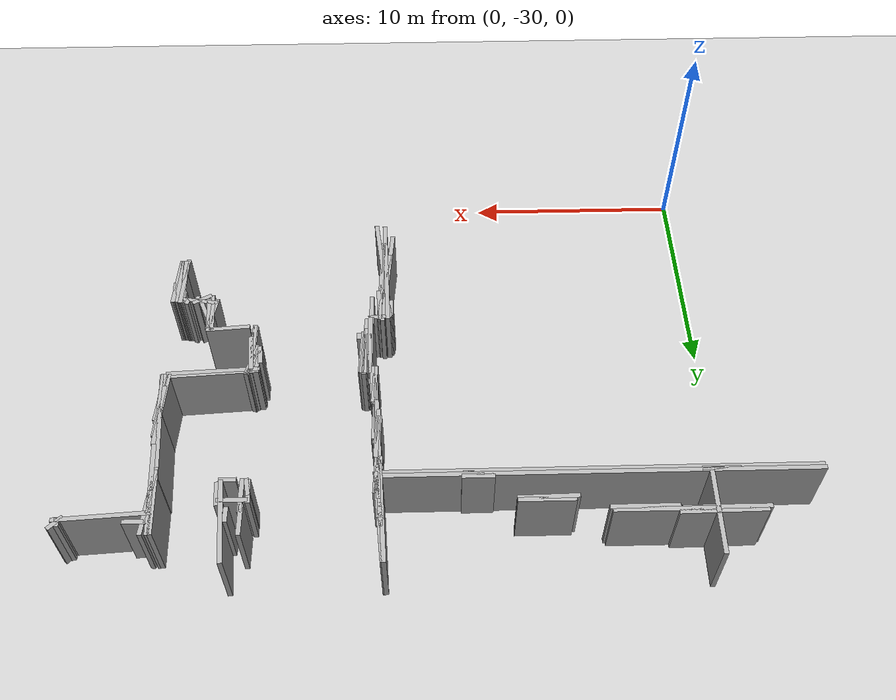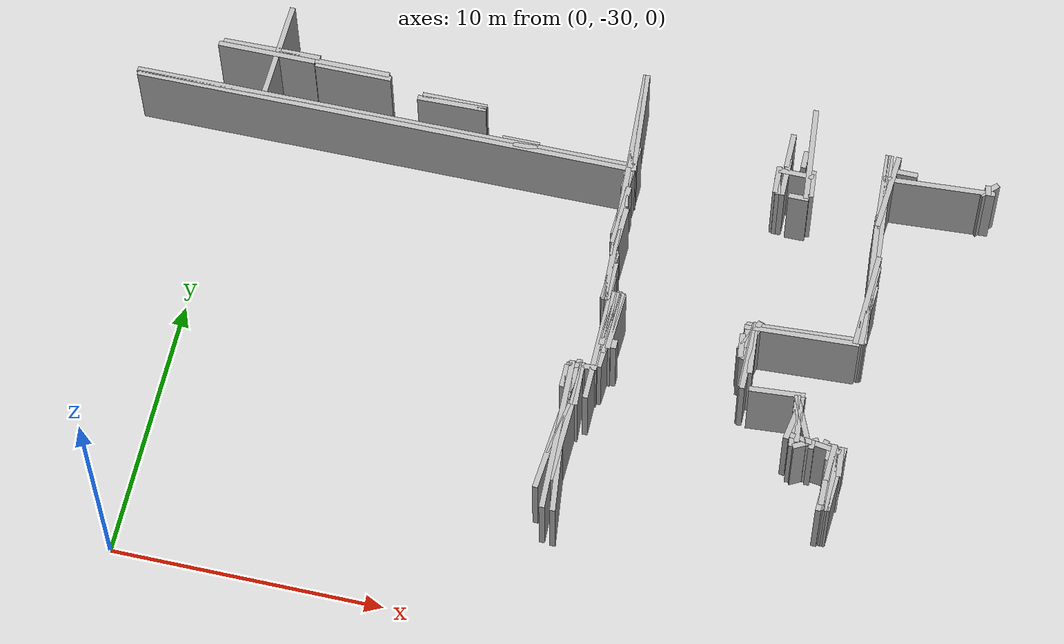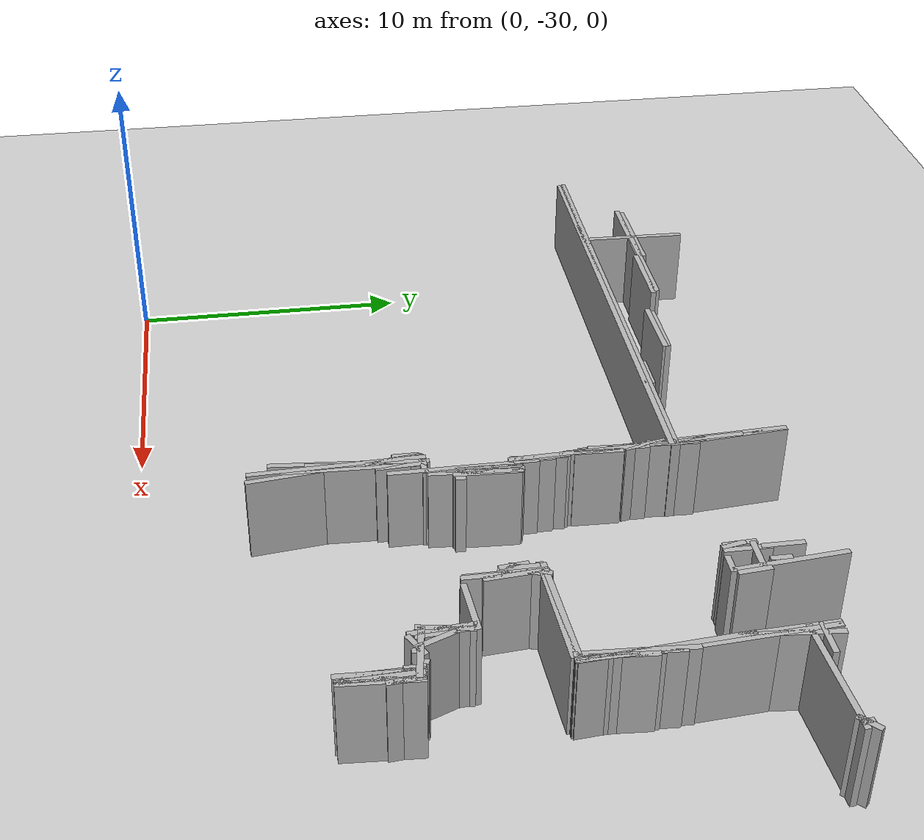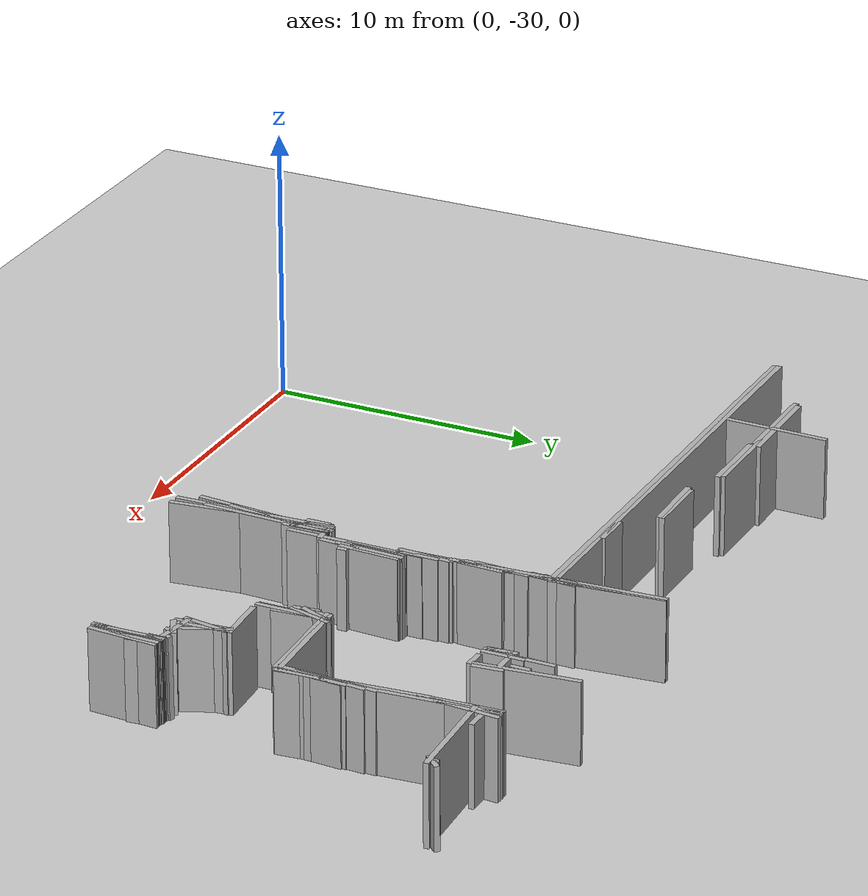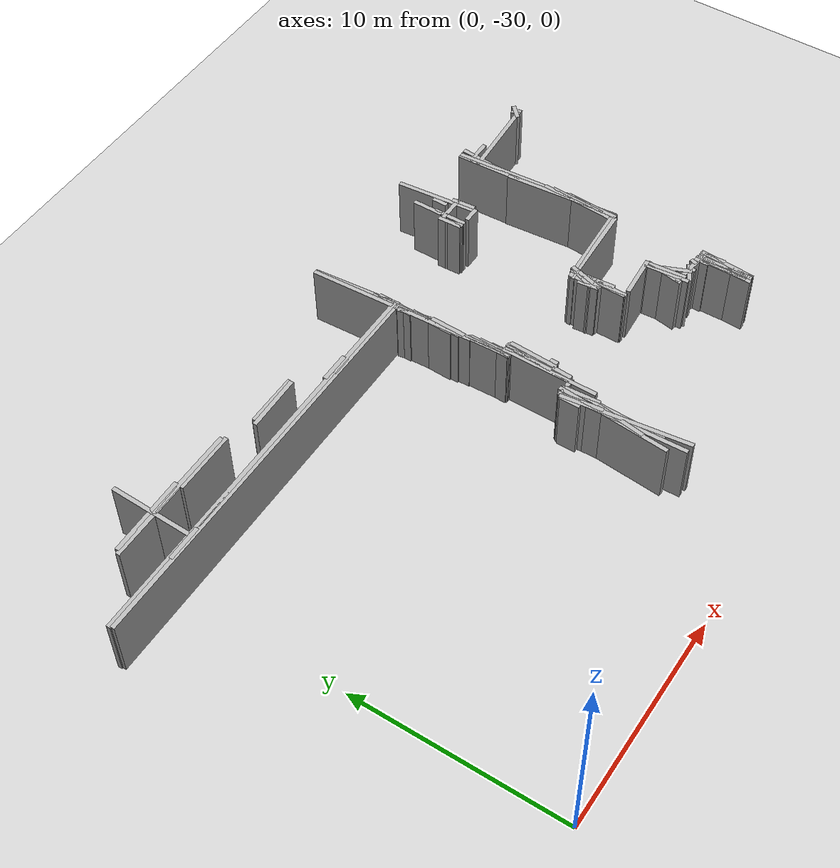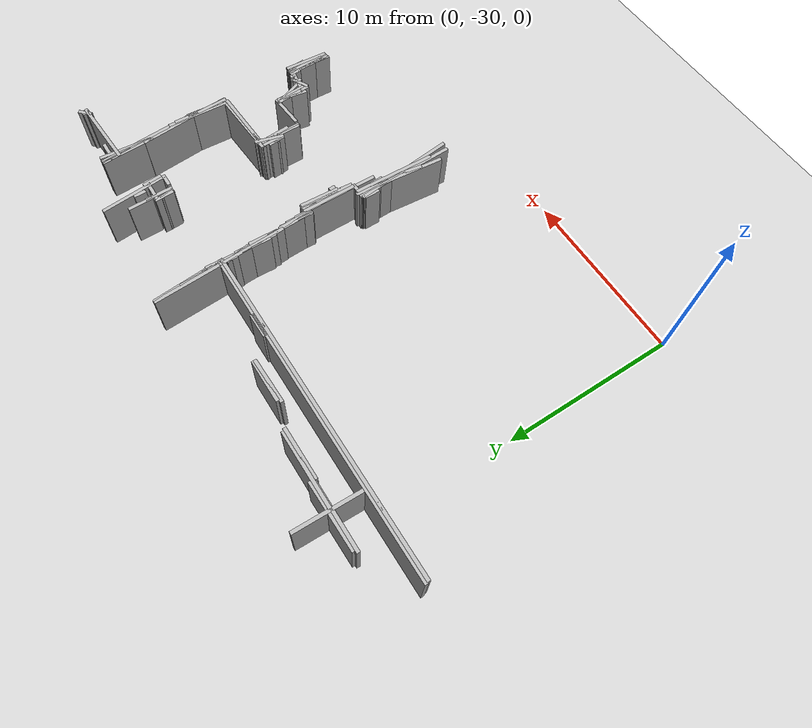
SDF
<sdf version="1.6">
 <world name="aboureyhan">
  <model name="ground_plane">
   <static>true</static>
   <link name="link">
    <collision name="collision">
     <geometry><plane><normal>0 0 1</normal><size>100 100</size></plane></geometry>
    </collision>
    <visual name="visual">
     <geometry><plane><normal>0 0 1</normal><size>500 500</size></plane></geometry>
     <material>
      <ambient>0.8 0.8 0.8 1</ambient>
      <diffuse>0.8 0.8 0.8 1</diffuse>
      <specular>0.8 0.8 0.8 1</specular>
     </material>
    </visual>
   </link>
  </model>
  <model name="wall_4">
   <static>true</static>
   <pose>5.725000000000001 -12.3 1.5 0 0 0.0</pose>
   <link name="link">
    <collision name="collision"><geometry><box><size>18.85 0.2 3.0</size></box></geometry></collision>
    <visual name="visual">
     <geometry><box><size>18.85 0.2 3.0</size></box></geometry>
     <material><ambient>0.5 0.5 0.5 1</ambient><diffuse>0.7 0.7 0.7 1</diffuse></material>
    </visual>
   </link>
  </model>
  <model name="wall_18">
   <static>true</static>
   <pose>5.700000000000001 -12.150000000000002 1.5 0 0 0.0</pose>
   <link name="link">
    <collision name="collision">
     <geometry><box><size>18.900000000000002 0.2 3.0</size></box></geometry>
    </collision>
    <visual name="visual">
     <geometry><box><size>18.900000000000002 0.2 3.0</size></box></geometry>
     <material><ambient>0.5 0.5 0.5 1</ambient><diffuse>0.7 0.7 0.7 1</diffuse></material>
    </visual>
   </link>
  </model>
  <model name="wall_20">
   <static>true</static>
   <pose>14.800000000000002 -23.375000000000004 1.5 0 0 -1.5366216031787017</pose>
   <link name="link">
    <collision name="collision"><geometry><box><size>5.853417805009311 0.2 3.0</size></box></geometry></collision>
    <visual name="visual">
     <geometry><box><size>5.853417805009311 0.2 3.0</size></box></geometry>
     <material><ambient>0.5 0.5 0.5 1</ambient><diffuse>0.7 0.7 0.7 1</diffuse></material>
    </visual>
   </link>
  </model>
  <model name="wall_36">
   <static>true</static>
   <pose>24.475 -14.850000000000001 1.5 0 0 -1.4860938159252384</pose>
   <link name="link">
    <collision name="collision">
     <geometry><box><size>5.3190694674914685 0.2 3.0</size></box></geometry>
    </collision>
    <visual name="visual">
     <geometry><box><size>5.3190694674914685 0.2 3.0</size></box></geometry>
     <material><ambient>0.5 0.5 0.5 1</ambient><diffuse>0.7 0.7 0.7 1</diffuse></material>
    </visual>
   </link>
  </model>
  <model name="wall_118">
   <static>true</static>
   <pose>15.125 -14.450000000000001 1.5 0 0 -1.5335001965752295</pose>
   <link name="link">
    <collision name="collision"><geometry><box><size>6.704662556758542 0.2 3.0</size></box></geometry></collision>
    <visual name="visual">
     <geometry><box><size>6.704662556758542 0.2 3.0</size></box></geometry>
     <material><ambient>0.5 0.5 0.5 1</ambient><diffuse>0.7 0.7 0.7 1</diffuse></material>
    </visual>
   </link>
  </model>
  <model name="wall_126">
   <static>true</static>
   <pose>24.400000000000002 -11.775000000000002 1.5 0 0 -1.5003249822161</pose>
   <link name="link">
    <collision name="collision"><geometry><box><size>4.260575078554537 0.2 3.0</size></box></geometry></collision>
    <visual name="visual">
     <geometry><box><size>4.260575078554537 0.2 3.0</size></box></geometry>
     <material><ambient>0.5 0.5 0.5 1</ambient><diffuse>0.7 0.7 0.7 1</diffuse></material>
    </visual>
   </link>
  </model>
  <model name="wall_129">
   <static>true</static>
   <pose>20.6 -10.250000000000002 1.5 0 0 1.5707963267948966</pose>
   <link name="link">
    <collision name="collision">
     <geometry><box><size>1.4000000000000021 0.2 3.0</size></box></geometry>
    </collision>
    <visual name="visual">
     <geometry><box><size>1.4000000000000021 0.2 3.0</size></box></geometry>
     <material><ambient>0.5 0.5 0.5 1</ambient><diffuse>0.7 0.7 0.7 1</diffuse></material>
    </visual>
   </link>
  </model>
  <model name="wall_132">
   <static>true</static>
   <pose>24.55 -22.975 1.5 0 0 -1.5316007248678414</pose>
   <link name="link">
    <collision name="collision">
     <geometry><box><size>2.5519600310349664 0.2 3.0</size></box></geometry>
    </collision>
    <visual name="visual">
     <geometry><box><size>2.5519600310349664 0.2 3.0</size></box></geometry>
     <material><ambient>0.5 0.5 0.5 1</ambient><diffuse>0.7 0.7 0.7 1</diffuse></material>
    </visual>
   </link>
  </model>
  <model name="wall_139">
   <static>true</static>
   <pose>15.075000000000001 -13.225000000000001 1.5 0 0 1.530817639671606</pose>
   <link name="link">
    <collision name="collision"><geometry><box><size>3.752998800959041 0.2 3.0</size></box></geometry></collision>
    <visual name="visual">
     <geometry><box><size>3.752998800959041 0.2 3.0</size></box></geometry>
     <material><ambient>0.5 0.5 0.5 1</ambient><diffuse>0.7 0.7 0.7 1</diffuse></material>
    </visual>
   </link>
  </model>
  <model name="wall_147">
   <static>true</static>
   <pose>15.5 -18.975 1.5 0 0 1.5707963267948966</pose>
   <link name="link">
    <collision name="collision">
     <geometry><box><size>3.1499999999999986 0.2 3.0</size></box></geometry>
    </collision>
    <visual name="visual">
     <geometry><box><size>3.1499999999999986 0.2 3.0</size></box></geometry>
     <material><ambient>0.5 0.5 0.5 1</ambient><diffuse>0.7 0.7 0.7 1</diffuse></material>
    </visual>
   </link>
  </model>
  <model name="wall_164">
   <static>true</static>
   <pose>14.55 -21.1 1.5 0 0 -1.5707963267948966</pose>
   <link name="link">
    <collision name="collision">
     <geometry><box><size>0.8999999999999986 0.2 3.0</size></box></geometry>
    </collision>
    <visual name="visual">
     <geometry><box><size>0.8999999999999986 0.2 3.0</size></box></geometry>
     <material><ambient>0.5 0.5 0.5 1</ambient><diffuse>0.7 0.7 0.7 1</diffuse></material>
    </visual>
   </link>
  </model>
  <model name="wall_177">
   <static>true</static>
   <pose>15.850000000000001 -18.575000000000003 1.5 0 0 1.526381111547985</pose>
   <link name="link">
    <collision name="collision">
     <geometry><box><size>2.2522211259110416 0.2 3.0</size></box></geometry>
    </collision>
    <visual name="visual">
     <geometry><box><size>2.2522211259110416 0.2 3.0</size></box></geometry>
     <material><ambient>0.5 0.5 0.5 1</ambient><diffuse>0.7 0.7 0.7 1</diffuse></material>
    </visual>
   </link>
  </model>
  <model name="wall_184">
   <static>true</static>
   <pose>21.650000000000002 -11.450000000000001 1.5 0 0 -1.48013643959415</pose>
   <link name="link">
    <collision name="collision"><geometry><box><size>1.104536101718724 0.2 3.0</size></box></geometry></collision>
    <visual name="visual">
     <geometry><box><size>1.104536101718724 0.2 3.0</size></box></geometry>
     <material><ambient>0.5 0.5 0.5 1</ambient><diffuse>0.7 0.7 0.7 1</diffuse></material>
    </visual>
   </link>
  </model>
  <model name="wall_197">
   <static>true</static>
   <pose>24.750000000000004 -22.275000000000002 1.5 0 0 -1.4840579881189102</pose>
   <link name="link">
    <collision name="collision">
     <geometry><box><size>1.1543396380615183 0.2 3.0</size></box></geometry>
    </collision>
    <visual name="visual">
     <geometry><box><size>1.1543396380615183 0.2 3.0</size></box></geometry>
     <material><ambient>0.5 0.5 0.5 1</ambient><diffuse>0.7 0.7 0.7 1</diffuse></material>
    </visual>
   </link>
  </model>
  <model name="wall_210">
   <static>true</static>
   <pose>21.375 -10.225000000000001 1.5 0 0 -1.4777325980704792</pose>
   <link name="link">
    <collision name="collision"><geometry><box><size>3.766297917053296 0.2 3.0</size></box></geometry></collision>
    <visual name="visual">
     <geometry><box><size>3.766297917053296 0.2 3.0</size></box></geometry>
     <material><ambient>0.5 0.5 0.5 1</ambient><diffuse>0.7 0.7 0.7 1</diffuse></material>
    </visual>
   </link>
  </model>
  <model name="wall_223">
   <static>true</static>
   <pose>22.475 -17.525000000000002 1.5 0 0 0.06165017063925908</pose>
   <link name="link">
    <collision name="collision"><geometry><box><size>4.057708713054693 0.2 3.0</size></box></geometry></collision>
    <visual name="visual">
     <geometry><box><size>4.057708713054693 0.2 3.0</size></box></geometry>
     <material><ambient>0.5 0.5 0.5 1</ambient><diffuse>0.7 0.7 0.7 1</diffuse></material>
    </visual>
   </link>
  </model>
  <model name="wall_239">
   <static>true</static>
   <pose>14.725000000000001 -22.975 1.5 0 0 1.4852910331166915</pose>
   <link name="link">
    <collision name="collision"><geometry><box><size>5.269250421075089 0.2 3.0</size></box></geometry></collision>
    <visual name="visual">
     <geometry><box><size>5.269250421075089 0.2 3.0</size></box></geometry>
     <material><ambient>0.5 0.5 0.5 1</ambient><diffuse>0.7 0.7 0.7 1</diffuse></material>
    </visual>
   </link>
  </model>
  <model name="wall_248">
   <static>true</static>
   <pose>1.1500000000000004 -10.200000000000001 1.5 0 0 1.544486609541974</pose>
   <link name="link">
    <collision name="collision"><geometry><box><size>3.801315561749643 0.2 3.0</size></box></geometry></collision>
    <visual name="visual">
     <geometry><box><size>3.801315561749643 0.2 3.0</size></box></geometry>
     <material><ambient>0.5 0.5 0.5 1</ambient><diffuse>0.7 0.7 0.7 1</diffuse></material>
    </visual>
   </link>
  </model>
  <model name="wall_260">
   <static>true</static>
   <pose>20.75 -18.85 1.5 0 0 1.5707963267948966</pose>
   <link name="link">
    <collision name="collision">
     <geometry><box><size>2.6000000000000014 0.2 3.0</size></box></geometry>
    </collision>
    <visual name="visual">
     <geometry><box><size>2.6000000000000014 0.2 3.0</size></box></geometry>
     <material><ambient>0.5 0.5 0.5 1</ambient><diffuse>0.7 0.7 0.7 1</diffuse></material>
    </visual>
   </link>
  </model>
  <model name="wall_281">
   <static>true</static>
   <pose>14.950000000000001 -23.450000000000003 1.5 0 0 -1.450687591227984</pose>
   <link name="link">
    <collision name="collision"><geometry><box><size>5.842088667591413 0.2 3.0</size></box></geometry></collision>
    <visual name="visual">
     <geometry><box><size>5.842088667591413 0.2 3.0</size></box></geometry>
     <material><ambient>0.5 0.5 0.5 1</ambient><diffuse>0.7 0.7 0.7 1</diffuse></material>
    </visual>
   </link>
  </model>
  <model name="wall_294">
   <static>true</static>
   <pose>15.100000000000001 -21.300000000000004 1.5 0 0 -1.5120405040791731</pose>
   <link name="link">
    <collision name="collision">
     <geometry><box><size>1.7029386365926393 0.2 3.0</size></box></geometry>
    </collision>
    <visual name="visual">
     <geometry><box><size>1.7029386365926393 0.2 3.0</size></box></geometry>
     <material><ambient>0.5 0.5 0.5 1</ambient><diffuse>0.7 0.7 0.7 1</diffuse></material>
    </visual>
   </link>
  </model>
  <model name="wall_295">
   <static>true</static>
   <pose>24.5 -15.725000000000001 1.5 0 0 1.516056546745016</pose>
   <link name="link">
    <collision name="collision">
     <geometry><box><size>3.6554753452868463 0.2 3.0</size></box></geometry>
    </collision>
    <visual name="visual">
     <geometry><box><size>3.6554753452868463 0.2 3.0</size></box></geometry>
     <material><ambient>0.5 0.5 0.5 1</ambient><diffuse>0.7 0.7 0.7 1</diffuse></material>
    </visual>
   </link>
  </model>
  <model name="wall_324">
   <static>true</static>
   <pose>8.0 -11.025 1.5 0 0 0.019228399099707482</pose>
   <link name="link">
    <collision name="collision">
     <geometry><box><size>2.6004807247891684 0.2 3.0</size></box></geometry>
    </collision>
    <visual name="visual">
     <geometry><box><size>2.6004807247891684 0.2 3.0</size></box></geometry>
     <material><ambient>0.5 0.5 0.5 1</ambient><diffuse>0.7 0.7 0.7 1</diffuse></material>
    </visual>
   </link>
  </model>
  <model name="wall_327">
   <static>true</static>
   <pose>21.0 -11.150000000000002 1.5 0 0 0.0</pose>
   <link name="link">
    <collision name="collision">
     <geometry><box><size>1.3000000000000007 0.2 3.0</size></box></geometry>
    </collision>
    <visual name="visual">
     <geometry><box><size>1.3000000000000007 0.2 3.0</size></box></geometry>
     <material><ambient>0.5 0.5 0.5 1</ambient><diffuse>0.7 0.7 0.7 1</diffuse></material>
    </visual>
   </link>
  </model>
  <model name="wall_329">
   <static>true</static>
   <pose>20.775 -18.25 1.5 0 0 1.296628875675238</pose>
   <link name="link">
    <collision name="collision">
     <geometry><box><size>1.6620770138594638 0.2 3.0</size></box></geometry>
    </collision>
    <visual name="visual">
     <geometry><box><size>1.6620770138594638 0.2 3.0</size></box></geometry>
     <material><ambient>0.5 0.5 0.5 1</ambient><diffuse>0.7 0.7 0.7 1</diffuse></material>
    </visual>
   </link>
  </model>
  <model name="wall_332">
   <static>true</static>
   <pose>20.55 -18.3 1.5 0 0 1.5707963267948966</pose>
   <link name="link">
    <collision name="collision">
     <geometry><box><size>1.1000000000000014 0.2 3.0</size></box></geometry>
    </collision>
    <visual name="visual">
     <geometry><box><size>1.1000000000000014 0.2 3.0</size></box></geometry>
     <material><ambient>0.5 0.5 0.5 1</ambient><diffuse>0.7 0.7 0.7 1</diffuse></material>
    </visual>
   </link>
  </model>
  <model name="wall_339">
   <static>true</static>
   <pose>8.075000000000001 -10.900000000000002 1.5 0 0 0.0</pose>
   <link name="link">
    <collision name="collision">
     <geometry><box><size>2.4499999999999993 0.2 3.0</size></box></geometry>
    </collision>
    <visual name="visual">
     <geometry><box><size>2.4499999999999993 0.2 3.0</size></box></geometry>
     <material><ambient>0.5 0.5 0.5 1</ambient><diffuse>0.7 0.7 0.7 1</diffuse></material>
    </visual>
   </link>
  </model>
  <model name="wall_346">
   <static>true</static>
   <pose>15.3 -16.775 1.5 0 0 -1.5220544754849643</pose>
   <link name="link">
    <collision name="collision">
     <geometry><box><size>2.0524375751773802 0.2 3.0</size></box></geometry>
    </collision>
    <visual name="visual">
     <geometry><box><size>2.0524375751773802 0.2 3.0</size></box></geometry>
     <material><ambient>0.5 0.5 0.5 1</ambient><diffuse>0.7 0.7 0.7 1</diffuse></material>
    </visual>
   </link>
  </model>
  <model name="wall_353">
   <static>true</static>
   <pose>3.325000000000001 -10.350000000000001 1.5 0 0 0.0</pose>
   <link name="link">
    <collision name="collision"><geometry><box><size>4.25 0.2 3.0</size></box></geometry></collision>
    <visual name="visual">
     <geometry><box><size>4.25 0.2 3.0</size></box></geometry>
     <material><ambient>0.5 0.5 0.5 1</ambient><diffuse>0.7 0.7 0.7 1</diffuse></material>
    </visual>
   </link>
  </model>
  <model name="wall_357">
   <static>true</static>
   <pose>24.3 -21.975 1.5 0 0 1.5707963267948966</pose>
   <link name="link">
    <collision name="collision">
     <geometry><box><size>0.6499999999999986 0.2 3.0</size></box></geometry>
    </collision>
    <visual name="visual">
     <geometry><box><size>0.6499999999999986 0.2 3.0</size></box></geometry>
     <material><ambient>0.5 0.5 0.5 1</ambient><diffuse>0.7 0.7 0.7 1</diffuse></material>
    </visual>
   </link>
  </model>
  <model name="wall_371">
   <static>true</static>
   <pose>14.975000000000001 -10.3 1.5 0 0 -1.4856369341751896</pose>
   <link name="link">
    <collision name="collision">
     <geometry><box><size>4.1149119067119795 0.2 3.0</size></box></geometry>
    </collision>
    <visual name="visual">
     <geometry><box><size>4.1149119067119795 0.2 3.0</size></box></geometry>
     <material><ambient>0.5 0.5 0.5 1</ambient><diffuse>0.7 0.7 0.7 1</diffuse></material>
    </visual>
   </link>
  </model>
  <model name="wall_376">
   <static>true</static>
   <pose>14.950000000000001 -12.100000000000001 1.5 0 0 -1.5188949283367235</pose>
   <link name="link">
    <collision name="collision"><geometry><box><size>7.710382610480497 0.2 3.0</size></box></geometry></collision>
    <visual name="visual">
     <geometry><box><size>7.710382610480497 0.2 3.0</size></box></geometry>
     <material><ambient>0.5 0.5 0.5 1</ambient><diffuse>0.7 0.7 0.7 1</diffuse></material>
    </visual>
   </link>
  </model>
  <model name="wall_392">
   <static>true</static>
   <pose>4.1000000000000005 -10.5 1.5 0 0 0.0</pose>
   <link name="link">
    <collision name="collision">
     <geometry><box><size>2.9000000000000004 0.2 3.0</size></box></geometry>
    </collision>
    <visual name="visual">
     <geometry><box><size>2.9000000000000004 0.2 3.0</size></box></geometry>
     <material><ambient>0.5 0.5 0.5 1</ambient><diffuse>0.7 0.7 0.7 1</diffuse></material>
    </visual>
   </link>
  </model>
  <model name="wall_407">
   <static>true</static>
   <pose>15.025000000000002 -22.825000000000003 1.5 0 0 1.539227870307119</pose>
   <link name="link">
    <collision name="collision"><geometry><box><size>4.752367830881781 0.2 3.0</size></box></geometry></collision>
    <visual name="visual">
     <geometry><box><size>4.752367830881781 0.2 3.0</size></box></geometry>
     <material><ambient>0.5 0.5 0.5 1</ambient><diffuse>0.7 0.7 0.7 1</diffuse></material>
    </visual>
   </link>
  </model>
  <model name="wall_408">
   <static>true</static>
   <pose>20.650000000000002 -11.375000000000002 1.5 0 0 -1.5707963267948966</pose>
   <link name="link">
    <collision name="collision">
     <geometry><box><size>1.5500000000000007 0.2 3.0</size></box></geometry>
    </collision>
    <visual name="visual">
     <geometry><box><size>1.5500000000000007 0.2 3.0</size></box></geometry>
     <material><ambient>0.5 0.5 0.5 1</ambient><diffuse>0.7 0.7 0.7 1</diffuse></material>
    </visual>
   </link>
  </model>
  <model name="wall_413">
   <static>true</static>
   <pose>24.625 -16.25 1.5 0 0 1.5515679276951906</pose>
   <link name="link">
    <collision name="collision">
     <geometry><box><size>2.6004807247891666 0.2 3.0</size></box></geometry>
    </collision>
    <visual name="visual">
     <geometry><box><size>2.6004807247891666 0.2 3.0</size></box></geometry>
     <material><ambient>0.5 0.5 0.5 1</ambient><diffuse>0.7 0.7 0.7 1</diffuse></material>
    </visual>
   </link>
  </model>
  <model name="wall_439">
   <static>true</static>
   <pose>10.850000000000001 -12.05 1.5 0 0 0.0</pose>
   <link name="link">
    <collision name="collision">
     <geometry><box><size>1.3999999999999986 0.2 3.0</size></box></geometry>
    </collision>
    <visual name="visual">
     <geometry><box><size>1.3999999999999986 0.2 3.0</size></box></geometry>
     <material><ambient>0.5 0.5 0.5 1</ambient><diffuse>0.7 0.7 0.7 1</diffuse></material>
    </visual>
   </link>
  </model>
  <model name="wall_441">
   <static>true</static>
   <pose>24.625 -16.625 1.5 0 0 -1.5437758776076334</pose>
   <link name="link">
    <collision name="collision">
     <geometry><box><size>1.8506755523321725 0.2 3.0</size></box></geometry>
    </collision>
    <visual name="visual">
     <geometry><box><size>1.8506755523321725 0.2 3.0</size></box></geometry>
     <material><ambient>0.5 0.5 0.5 1</ambient><diffuse>0.7 0.7 0.7 1</diffuse></material>
    </visual>
   </link>
  </model>
  <model name="wall_443">
   <static>true</static>
   <pose>20.875 -18.65 1.5 0 0 -1.4876550949064542</pose>
   <link name="link">
    <collision name="collision">
     <geometry><box><size>1.8062391868188452 0.2 3.0</size></box></geometry>
    </collision>
    <visual name="visual">
     <geometry><box><size>1.8062391868188452 0.2 3.0</size></box></geometry>
     <material><ambient>0.5 0.5 0.5 1</ambient><diffuse>0.7 0.7 0.7 1</diffuse></material>
    </visual>
   </link>
  </model>
  <model name="wall_448">
   <static>true</static>
   <pose>15.225000000000001 -14.775000000000002 1.5 0 0 1.5405025668761232</pose>
   <link name="link">
    <collision name="collision">
     <geometry><box><size>1.6507574019219162 0.2 3.0</size></box></geometry>
    </collision>
    <visual name="visual">
     <geometry><box><size>1.6507574019219162 0.2 3.0</size></box></geometry>
     <material><ambient>0.5 0.5 0.5 1</ambient><diffuse>0.7 0.7 0.7 1</diffuse></material>
    </visual>
   </link>
  </model>
  <model name="wall_449">
   <static>true</static>
   <pose>0.7500000000000009 -10.400000000000002 1.5 0 0 0.0</pose>
   <link name="link">
    <collision name="collision"><geometry><box><size>3.700000000000001 0.2 3.0</size></box></geometry></collision>
    <visual name="visual">
     <geometry><box><size>3.700000000000001 0.2 3.0</size></box></geometry>
     <material><ambient>0.5 0.5 0.5 1</ambient><diffuse>0.7 0.7 0.7 1</diffuse></material>
    </visual>
   </link>
  </model>
  <model name="wall_451">
   <static>true</static>
   <pose>20.425 -11.750000000000002 1.5 0 0 -1.3854483767992036</pose>
   <link name="link">
    <collision name="collision">
     <geometry><box><size>0.8139410298049857 0.2 3.0</size></box></geometry>
    </collision>
    <visual name="visual">
     <geometry><box><size>0.8139410298049857 0.2 3.0</size></box></geometry>
     <material><ambient>0.5 0.5 0.5 1</ambient><diffuse>0.7 0.7 0.7 1</diffuse></material>
    </visual>
   </link>
  </model>
  <model name="wall_452">
   <static>true</static>
   <pose>26.200000000000003 -10.525000000000002 1.5 0 0 0.06090020827798802</pose>
   <link name="link">
    <collision name="collision"><geometry><box><size>4.107614879708172 0.2 3.0</size></box></geometry></collision>
    <visual name="visual">
     <geometry><box><size>4.107614879708172 0.2 3.0</size></box></geometry>
     <material><ambient>0.5 0.5 0.5 1</ambient><diffuse>0.7 0.7 0.7 1</diffuse></material>
    </visual>
   </link>
  </model>
  <model name="wall_459">
   <static>true</static>
   <pose>22.05 -20.075000000000003 1.5 0 0 0.07485984771076792</pose>
   <link name="link">
    <collision name="collision">
     <geometry><box><size>2.0056171120131583 0.2 3.0</size></box></geometry>
    </collision>
    <visual name="visual">
     <geometry><box><size>2.0056171120131583 0.2 3.0</size></box></geometry>
     <material><ambient>0.5 0.5 0.5 1</ambient><diffuse>0.7 0.7 0.7 1</diffuse></material>
    </visual>
   </link>
  </model>
  <model name="wall_478">
   <static>true</static>
   <pose>22.475 -17.65 1.5 0 0 0.04815551305991528</pose>
   <link name="link">
    <collision name="collision"><geometry><box><size>4.154816482108448 0.2 3.0</size></box></geometry></collision>
    <visual name="visual">
     <geometry><box><size>4.154816482108448 0.2 3.0</size></box></geometry>
     <material><ambient>0.5 0.5 0.5 1</ambient><diffuse>0.7 0.7 0.7 1</diffuse></material>
    </visual>
   </link>
  </model>
  <model name="wall_516">
   <static>true</static>
   <pose>22.85 -20.925 1.5 0 0 1.4010180528265597</pose>
   <link name="link">
    <collision name="collision">
     <geometry><box><size>1.7755280904564699 0.2 3.0</size></box></geometry>
    </collision>
    <visual name="visual">
     <geometry><box><size>1.7755280904564699 0.2 3.0</size></box></geometry>
     <material><ambient>0.5 0.5 0.5 1</ambient><diffuse>0.7 0.7 0.7 1</diffuse></material>
    </visual>
   </link>
  </model>
  <model name="wall_526">
   <static>true</static>
   <pose>24.425000000000004 -22.950000000000003 1.5 0 0 -1.551567927695189</pose>
   <link name="link">
    <collision name="collision">
     <geometry><box><size>2.6004807247891666 0.2 3.0</size></box></geometry>
    </collision>
    <visual name="visual">
     <geometry><box><size>2.6004807247891666 0.2 3.0</size></box></geometry>
     <material><ambient>0.5 0.5 0.5 1</ambient><diffuse>0.7 0.7 0.7 1</diffuse></material>
    </visual>
   </link>
  </model>
  <model name="wall_542">
   <static>true</static>
   <pose>23.15 -20.950000000000003 1.5 0 0 -1.1722738811284765</pose>
   <link name="link">
    <collision name="collision">
     <geometry><box><size>2.0615528128088325 0.2 3.0</size></box></geometry>
    </collision>
    <visual name="visual">
     <geometry><box><size>2.0615528128088325 0.2 3.0</size></box></geometry>
     <material><ambient>0.5 0.5 0.5 1</ambient><diffuse>0.7 0.7 0.7 1</diffuse></material>
    </visual>
   </link>
  </model>
  <model name="wall_549">
   <static>true</static>
   <pose>15.750000000000002 -18.950000000000003 1.5 0 0 1.5063694873693432</pose>
   <link name="link">
    <collision name="collision">
     <geometry><box><size>3.1064449134018113 0.2 3.0</size></box></geometry>
    </collision>
    <visual name="visual">
     <geometry><box><size>3.1064449134018113 0.2 3.0</size></box></geometry>
     <material><ambient>0.5 0.5 0.5 1</ambient><diffuse>0.7 0.7 0.7 1</diffuse></material>
    </visual>
   </link>
  </model>
  <model name="wall_554">
   <static>true</static>
   <pose>0.6750000000000003 -12.200000000000003 1.5 0 0 0.0</pose>
   <link name="link">
    <collision name="collision">
     <geometry><box><size>1.6499999999999995 0.2 3.0</size></box></geometry>
    </collision>
    <visual name="visual">
     <geometry><box><size>1.6499999999999995 0.2 3.0</size></box></geometry>
     <material><ambient>0.5 0.5 0.5 1</ambient><diffuse>0.7 0.7 0.7 1</diffuse></material>
    </visual>
   </link>
  </model>
  <model name="wall_560">
   <static>true</static>
   <pose>24.725 -10.25 1.5 0 0 0.0</pose>
   <link name="link">
    <collision name="collision"><geometry><box><size>1.25 0.2 3.0</size></box></geometry></collision>
    <visual name="visual">
     <geometry><box><size>1.25 0.2 3.0</size></box></geometry>
     <material><ambient>0.5 0.5 0.5 1</ambient><diffuse>0.7 0.7 0.7 1</diffuse></material>
    </visual>
   </link>
  </model>
  <model name="wall_563">
   <static>true</static>
   <pose>24.375 -22.85 1.5 0 0 -1.5499660067586793</pose>
   <link name="link">
    <collision name="collision"><geometry><box><size>2.400520776831563 0.2 3.0</size></box></geometry></collision>
    <visual name="visual">
     <geometry><box><size>2.400520776831563 0.2 3.0</size></box></geometry>
     <material><ambient>0.5 0.5 0.5 1</ambient><diffuse>0.7 0.7 0.7 1</diffuse></material>
    </visual>
   </link>
  </model>
  <model name="wall_587">
   <static>true</static>
   <pose>24.625000000000004 -16.225 1.5 0 0 1.5042281630190735</pose>
   <link name="link">
    <collision name="collision"><geometry><box><size>2.254994456755936 0.2 3.0</size></box></geometry></collision>
    <visual name="visual">
     <geometry><box><size>2.254994456755936 0.2 3.0</size></box></geometry>
     <material><ambient>0.5 0.5 0.5 1</ambient><diffuse>0.7 0.7 0.7 1</diffuse></material>
    </visual>
   </link>
  </model>
  <model name="wall_589">
   <static>true</static>
   <pose>15.050000000000002 -13.175000000000002 1.5 0 0 -1.3667783472023474</pose>
   <link name="link">
    <collision name="collision"><geometry><box><size>1.480709289496084 0.2 3.0</size></box></geometry></collision>
    <visual name="visual">
     <geometry><box><size>1.480709289496084 0.2 3.0</size></box></geometry>
     <material><ambient>0.5 0.5 0.5 1</ambient><diffuse>0.7 0.7 0.7 1</diffuse></material>
    </visual>
   </link>
  </model>
  <model name="wall_602">
   <static>true</static>
   <pose>15.450000000000003 -19.575000000000003 1.5 0 0 1.5707963267948966</pose>
   <link name="link">
    <collision name="collision"><geometry><box><size>4.449999999999999 0.2 3.0</size></box></geometry></collision>
    <visual name="visual">
     <geometry><box><size>4.449999999999999 0.2 3.0</size></box></geometry>
     <material><ambient>0.5 0.5 0.5 1</ambient><diffuse>0.7 0.7 0.7 1</diffuse></material>
    </visual>
   </link>
  </model>
  <model name="wall_614">
   <static>true</static>
   <pose>23.700000000000003 -21.75 1.5 0 0 -0.14888994760949759</pose>
   <link name="link">
    <collision name="collision"><geometry><box><size>2.022374841615669 0.2 3.0</size></box></geometry></collision>
    <visual name="visual">
     <geometry><box><size>2.022374841615669 0.2 3.0</size></box></geometry>
     <material><ambient>0.5 0.5 0.5 1</ambient><diffuse>0.7 0.7 0.7 1</diffuse></material>
    </visual>
   </link>
  </model>
  <model name="wall_620">
   <static>true</static>
   <pose>24.225 -11.200000000000001 1.5 0 0 -1.522446940142994</pose>
   <link name="link">
    <collision name="collision">
     <geometry><box><size>3.1036269105676966 0.2 3.0</size></box></geometry>
    </collision>
    <visual name="visual">
     <geometry><box><size>3.1036269105676966 0.2 3.0</size></box></geometry>
     <material><ambient>0.5 0.5 0.5 1</ambient><diffuse>0.7 0.7 0.7 1</diffuse></material>
    </visual>
   </link>
  </model>
  <model name="wall_626">
   <static>true</static>
   <pose>15.350000000000001 -17.0 1.5 0 0 1.5707963267948966</pose>
   <link name="link">
    <collision name="collision"><geometry><box><size>1.5 0.2 3.0</size></box></geometry></collision>
    <visual name="visual">
     <geometry><box><size>1.5 0.2 3.0</size></box></geometry>
     <material><ambient>0.5 0.5 0.5 1</ambient><diffuse>0.7 0.7 0.7 1</diffuse></material>
    </visual>
   </link>
  </model>
  <model name="wall_643">
   <static>true</static>
   <pose>0.9000000000000004 -10.225000000000001 1.5 0 0 0.01351269101332745</pose>
   <link name="link">
    <collision name="collision"><geometry><box><size>3.700337822415677 0.2 3.0</size></box></geometry></collision>
    <visual name="visual">
     <geometry><box><size>3.700337822415677 0.2 3.0</size></box></geometry>
     <material><ambient>0.5 0.5 0.5 1</ambient><diffuse>0.7 0.7 0.7 1</diffuse></material>
    </visual>
   </link>
  </model>
  <model name="wall_656">
   <static>true</static>
   <pose>15.200000000000001 -20.575000000000003 1.5 0 0 0.062418809995958176</pose>
   <link name="link">
    <collision name="collision">
     <geometry><box><size>0.8015609770940706 0.2 3.0</size></box></geometry>
    </collision>
    <visual name="visual">
     <geometry><box><size>0.8015609770940706 0.2 3.0</size></box></geometry>
     <material><ambient>0.5 0.5 0.5 1</ambient><diffuse>0.7 0.7 0.7 1</diffuse></material>
    </visual>
   </link>
  </model>
  <model name="wall_676">
   <static>true</static>
   <pose>24.725 -22.975 1.5 0 0 1.5120405040791716</pose>
   <link name="link">
    <collision name="collision">
     <geometry><box><size>2.5544079548889576 0.2 3.0</size></box></geometry>
    </collision>
    <visual name="visual">
     <geometry><box><size>2.5544079548889576 0.2 3.0</size></box></geometry>
     <material><ambient>0.5 0.5 0.5 1</ambient><diffuse>0.7 0.7 0.7 1</diffuse></material>
    </visual>
   </link>
  </model>
  <model name="wall_687">
   <static>true</static>
   <pose>15.400000000000002 -17.225 1.5 0 0 1.5707963267948966</pose>
   <link name="link">
    <collision name="collision">
     <geometry><box><size>0.8500000000000014 0.2 3.0</size></box></geometry>
    </collision>
    <visual name="visual">
     <geometry><box><size>0.8500000000000014 0.2 3.0</size></box></geometry>
     <material><ambient>0.5 0.5 0.5 1</ambient><diffuse>0.7 0.7 0.7 1</diffuse></material>
    </visual>
   </link>
  </model>
  <model name="wall_688">
   <static>true</static>
   <pose>21.200000000000003 -10.500000000000002 1.5 0 0 1.5707963267948966</pose>
   <link name="link">
    <collision name="collision">
     <geometry><box><size>0.6999999999999993 0.2 3.0</size></box></geometry>
    </collision>
    <visual name="visual">
     <geometry><box><size>0.6999999999999993 0.2 3.0</size></box></geometry>
     <material><ambient>0.5 0.5 0.5 1</ambient><diffuse>0.7 0.7 0.7 1</diffuse></material>
    </visual>
   </link>
  </model>
  <model name="wall_693">
   <static>true</static>
   <pose>15.700000000000001 -18.625 1.5 0 0 1.5316007248678427</pose>
   <link name="link">
    <collision name="collision"><geometry><box><size>2.55196003103497 0.2 3.0</size></box></geometry></collision>
    <visual name="visual">
     <geometry><box><size>2.55196003103497 0.2 3.0</size></box></geometry>
     <material><ambient>0.5 0.5 0.5 1</ambient><diffuse>0.7 0.7 0.7 1</diffuse></material>
    </visual>
   </link>
  </model>
  <model name="wall_712">
   <static>true</static>
   <pose>14.950000000000001 -11.025 1.5 0 0 -1.530002643927032</pose>
   <link name="link">
    <collision name="collision"><geometry><box><size>2.452039967047845 0.2 3.0</size></box></geometry></collision>
    <visual name="visual">
     <geometry><box><size>2.452039967047845 0.2 3.0</size></box></geometry>
     <material><ambient>0.5 0.5 0.5 1</ambient><diffuse>0.7 0.7 0.7 1</diffuse></material>
    </visual>
   </link>
  </model>
  <model name="wall_715">
   <static>true</static>
   <pose>20.675000000000004 -18.075000000000003 1.5 0 0 1.1562894522101101</pose>
   <link name="link">
    <collision name="collision">
     <geometry><box><size>1.3656500283747666 0.2 3.0</size></box></geometry>
    </collision>
    <visual name="visual">
     <geometry><box><size>1.3656500283747666 0.2 3.0</size></box></geometry>
     <material><ambient>0.5 0.5 0.5 1</ambient><diffuse>0.7 0.7 0.7 1</diffuse></material>
    </visual>
   </link>
  </model>
  <model name="wall_717">
   <static>true</static>
   <pose>20.450000000000003 -18.525 1.5 0 0 -1.4659193880646648</pose>
   <link name="link">
    <collision name="collision"><geometry><box><size>0.955248658727139 0.2 3.0</size></box></geometry></collision>
    <visual name="visual">
     <geometry><box><size>0.955248658727139 0.2 3.0</size></box></geometry>
     <material><ambient>0.5 0.5 0.5 1</ambient><diffuse>0.7 0.7 0.7 1</diffuse></material>
    </visual>
   </link>
  </model>
  <model name="wall_727">
   <static>true</static>
   <pose>14.825000000000001 -23.275000000000002 1.5 0 0 1.4164775508687786</pose>
   <link name="link">
    <collision name="collision"><geometry><box><size>2.27705950734714 0.2 3.0</size></box></geometry></collision>
    <visual name="visual">
     <geometry><box><size>2.27705950734714 0.2 3.0</size></box></geometry>
     <material><ambient>0.5 0.5 0.5 1</ambient><diffuse>0.7 0.7 0.7 1</diffuse></material>
    </visual>
   </link>
  </model>
  <model name="wall_741">
   <static>true</static>
   <pose>24.425000000000004 -11.150000000000002 1.5 0 0 1.4876550949064542</pose>
   <link name="link">
    <collision name="collision"><geometry><box><size>3.010398644698074 0.2 3.0</size></box></geometry></collision>
    <visual name="visual">
     <geometry><box><size>3.010398644698074 0.2 3.0</size></box></geometry>
     <material><ambient>0.5 0.5 0.5 1</ambient><diffuse>0.7 0.7 0.7 1</diffuse></material>
    </visual>
   </link>
  </model>
  <model name="wall_747">
   <static>true</static>
   <pose>20.8 -18.85 1.5 0 0 1.5707963267948966</pose>
   <link name="link">
    <collision name="collision"><geometry><box><size>2.700000000000003 0.2 3.0</size></box></geometry></collision>
    <visual name="visual">
     <geometry><box><size>2.700000000000003 0.2 3.0</size></box></geometry>
     <material><ambient>0.5 0.5 0.5 1</ambient><diffuse>0.7 0.7 0.7 1</diffuse></material>
    </visual>
   </link>
  </model>
  <model name="wall_758">
   <static>true</static>
   <pose>15.575000000000001 -18.5 1.5 0 0 1.5480729659532553</pose>
   <link name="link">
    <collision name="collision"><geometry><box><size>2.200568108466538 0.2 3.0</size></box></geometry></collision>
    <visual name="visual">
     <geometry><box><size>2.200568108466538 0.2 3.0</size></box></geometry>
     <material><ambient>0.5 0.5 0.5 1</ambient><diffuse>0.7 0.7 0.7 1</diffuse></material>
    </visual>
   </link>
  </model>
  <model name="wall_770">
   <static>true</static>
   <pose>24.6 -22.975 1.5 0 0 1.531600724867844</pose>
   <link name="link">
    <collision name="collision"><geometry><box><size>2.551960031034966 0.2 3.0</size></box></geometry></collision>
    <visual name="visual">
     <geometry><box><size>2.551960031034966 0.2 3.0</size></box></geometry>
     <material><ambient>0.5 0.5 0.5 1</ambient><diffuse>0.7 0.7 0.7 1</diffuse></material>
    </visual>
   </link>
  </model>
  <model name="wall_778">
   <static>true</static>
   <pose>20.375 -11.55 1.5 0 0 -1.525373047373319</pose>
   <link name="link">
    <collision name="collision">
     <geometry><box><size>1.1011357772772634 0.2 3.0</size></box></geometry>
    </collision>
    <visual name="visual">
     <geometry><box><size>1.1011357772772634 0.2 3.0</size></box></geometry>
     <material><ambient>0.5 0.5 0.5 1</ambient><diffuse>0.7 0.7 0.7 1</diffuse></material>
    </visual>
   </link>
  </model>
  <model name="wall_800">
   <static>true</static>
   <pose>15.100000000000001 -14.250000000000002 1.5 0 0 1.5291537476963077</pose>
   <link name="link">
    <collision name="collision"><geometry><box><size>2.402082429892865 0.2 3.0</size></box></geometry></collision>
    <visual name="visual">
     <geometry><box><size>2.402082429892865 0.2 3.0</size></box></geometry>
     <material><ambient>0.5 0.5 0.5 1</ambient><diffuse>0.7 0.7 0.7 1</diffuse></material>
    </visual>
   </link>
  </model>
  <model name="wall_804">
   <static>true</static>
   <pose>23.425 -21.825000000000003 1.5 0 0 0.4868992318112677</pose>
   <link name="link">
    <collision name="collision">
     <geometry><box><size>0.9617692030835682 0.2 3.0</size></box></geometry>
    </collision>
    <visual name="visual">
     <geometry><box><size>0.9617692030835682 0.2 3.0</size></box></geometry>
     <material><ambient>0.5 0.5 0.5 1</ambient><diffuse>0.7 0.7 0.7 1</diffuse></material>
    </visual>
   </link>
  </model>
  <model name="wall_810">
   <static>true</static>
   <pose>15.650000000000002 -18.375 1.5 0 0 1.519559159391477</pose>
   <link name="link">
    <collision name="collision">
     <geometry><box><size>1.9525624189766628 0.2 3.0</size></box></geometry>
    </collision>
    <visual name="visual">
     <geometry><box><size>1.9525624189766628 0.2 3.0</size></box></geometry>
     <material><ambient>0.5 0.5 0.5 1</ambient><diffuse>0.7 0.7 0.7 1</diffuse></material>
    </visual>
   </link>
  </model>
  <model name="wall_821">
   <static>true</static>
   <pose>23.025000000000002 -20.950000000000003 1.5 0 0 -1.4876550949064562</pose>
   <link name="link">
    <collision name="collision">
     <geometry><box><size>1.8062391868188448 0.2 3.0</size></box></geometry>
    </collision>
    <visual name="visual">
     <geometry><box><size>1.8062391868188448 0.2 3.0</size></box></geometry>
     <material><ambient>0.5 0.5 0.5 1</ambient><diffuse>0.7 0.7 0.7 1</diffuse></material>
    </visual>
   </link>
  </model>
  <model name="wall_839">
   <static>true</static>
   <pose>24.400000000000002 -22.975 1.5 0 0 1.5330783743280318</pose>
   <link name="link">
    <collision name="collision"><geometry><box><size>2.651886121235226 0.2 3.0</size></box></geometry></collision>
    <visual name="visual">
     <geometry><box><size>2.651886121235226 0.2 3.0</size></box></geometry>
     <material><ambient>0.5 0.5 0.5 1</ambient><diffuse>0.7 0.7 0.7 1</diffuse></material>
    </visual>
   </link>
  </model>
  <model name="wall_855">
   <static>true</static>
   <pose>23.650000000000002 -21.825000000000003 1.5 0 0 1.5707963267948966</pose>
   <link name="link">
    <collision name="collision">
     <geometry><box><size>0.3500000000000014 0.2 3.0</size></box></geometry>
    </collision>
    <visual name="visual">
     <geometry><box><size>0.3500000000000014 0.2 3.0</size></box></geometry>
     <material><ambient>0.5 0.5 0.5 1</ambient><diffuse>0.7 0.7 0.7 1</diffuse></material>
    </visual>
   </link>
  </model>
  <model name="wall_861">
   <static>true</static>
   <pose>24.575 -15.600000000000001 1.5 0 0 1.5131678993174231</pose>
   <link name="link">
    <collision name="collision"><geometry><box><size>2.604323328621085 0.2 3.0</size></box></geometry></collision>
    <visual name="visual">
     <geometry><box><size>2.604323328621085 0.2 3.0</size></box></geometry>
     <material><ambient>0.5 0.5 0.5 1</ambient><diffuse>0.7 0.7 0.7 1</diffuse></material>
    </visual>
   </link>
  </model>
  <model name="wall_869">
   <static>true</static>
   <pose>16.0 -19.475 1.5 0 0 1.5707963267948966</pose>
   <link name="link">
    <collision name="collision">
     <geometry><box><size>0.3500000000000014 0.2 3.0</size></box></geometry>
    </collision>
    <visual name="visual">
     <geometry><box><size>0.3500000000000014 0.2 3.0</size></box></geometry>
     <material><ambient>0.5 0.5 0.5 1</ambient><diffuse>0.7 0.7 0.7 1</diffuse></material>
    </visual>
   </link>
  </model>
  <model name="wall_873">
   <static>true</static>
   <pose>11.05 -12.200000000000003 1.5 0 0 0.0</pose>
   <link name="link">
    <collision name="collision">
     <geometry><box><size>0.8999999999999986 0.2 3.0</size></box></geometry>
    </collision>
    <visual name="visual">
     <geometry><box><size>0.8999999999999986 0.2 3.0</size></box></geometry>
     <material><ambient>0.5 0.5 0.5 1</ambient><diffuse>0.7 0.7 0.7 1</diffuse></material>
    </visual>
   </link>
  </model>
  <model name="wall_875">
   <static>true</static>
   <pose>24.1 -21.700000000000003 1.5 0 0 1.2490457723982509</pose>
   <link name="link">
    <collision name="collision">
     <geometry><box><size>0.31622776601683905 0.2 3.0</size></box></geometry>
    </collision>
    <visual name="visual">
     <geometry><box><size>0.31622776601683905 0.2 3.0</size></box></geometry>
     <material><ambient>0.5 0.5 0.5 1</ambient><diffuse>0.7 0.7 0.7 1</diffuse></material>
    </visual>
   </link>
  </model>
  <model name="wall_885">
   <static>true</static>
   <pose>14.775000000000002 -21.475 1.5 0 0 -1.4432867685796587</pose>
   <link name="link">
    <collision name="collision">
     <geometry><box><size>1.9659603251337527 0.2 3.0</size></box></geometry>
    </collision>
    <visual name="visual">
     <geometry><box><size>1.9659603251337527 0.2 3.0</size></box></geometry>
     <material><ambient>0.5 0.5 0.5 1</ambient><diffuse>0.7 0.7 0.7 1</diffuse></material>
    </visual>
   </link>
  </model>
  <model name="wall_900">
   <static>true</static>
   <pose>22.875 -21.025 1.5 0 0 -1.4977557614917762</pose>
   <link name="link">
    <collision name="collision">
     <geometry><box><size>2.0554804791094474 0.2 3.0</size></box></geometry>
    </collision>
    <visual name="visual">
     <geometry><box><size>2.0554804791094474 0.2 3.0</size></box></geometry>
     <material><ambient>0.5 0.5 0.5 1</ambient><diffuse>0.7 0.7 0.7 1</diffuse></material>
    </visual>
   </link>
  </model>
  <model name="wall_901">
   <static>true</static>
   <pose>15.250000000000002 -16.8 1.5 0 0 1.518213265183956</pose>
   <link name="link">
    <collision name="collision">
     <geometry><box><size>1.9026297590440433 0.2 3.0</size></box></geometry>
    </collision>
    <visual name="visual">
     <geometry><box><size>1.9026297590440433 0.2 3.0</size></box></geometry>
     <material><ambient>0.5 0.5 0.5 1</ambient><diffuse>0.7 0.7 0.7 1</diffuse></material>
    </visual>
   </link>
  </model>
  <model name="wall_921">
   <static>true</static>
   <pose>28.025000000000002 -10.275 1.5 0 0 0.7853981633974451</pose>
   <link name="link">
    <collision name="collision">
     <geometry><box><size>0.7778174593052058 0.2 3.0</size></box></geometry>
    </collision>
    <visual name="visual">
     <geometry><box><size>0.7778174593052058 0.2 3.0</size></box></geometry>
     <material><ambient>0.5 0.5 0.5 1</ambient><diffuse>0.7 0.7 0.7 1</diffuse></material>
    </visual>
   </link>
  </model>
  <model name="wall_933">
   <static>true</static>
   <pose>21.275000000000002 -12.100000000000001 1.5 0 0 0.0</pose>
   <link name="link">
    <collision name="collision"><geometry><box><size>0.75 0.2 3.0</size></box></geometry></collision>
    <visual name="visual">
     <geometry><box><size>0.75 0.2 3.0</size></box></geometry>
     <material><ambient>0.5 0.5 0.5 1</ambient><diffuse>0.7 0.7 0.7 1</diffuse></material>
    </visual>
   </link>
  </model>
  <model name="wall_961">
   <static>true</static>
   <pose>15.625000000000002 -18.25 1.5 0 0 1.5413930385908912</pose>
   <link name="link">
    <collision name="collision">
     <geometry><box><size>1.7007351351694941 0.2 3.0</size></box></geometry>
    </collision>
    <visual name="visual">
     <geometry><box><size>1.7007351351694941 0.2 3.0</size></box></geometry>
     <material><ambient>0.5 0.5 0.5 1</ambient><diffuse>0.7 0.7 0.7 1</diffuse></material>
    </visual>
   </link>
  </model>
  <model name="wall_966">
   <static>true</static>
   <pose>14.975000000000001 -12.250000000000002 1.5 0 0 1.5413930385908932</pose>
   <link name="link">
    <collision name="collision"><geometry><box><size>1.700735135169494 0.2 3.0</size></box></geometry></collision>
    <visual name="visual">
     <geometry><box><size>1.700735135169494 0.2 3.0</size></box></geometry>
     <material><ambient>0.5 0.5 0.5 1</ambient><diffuse>0.7 0.7 0.7 1</diffuse></material>
    </visual>
   </link>
  </model>
  <model name="wall_994">
   <static>true</static>
   <pose>27.975 -10.3 1.5 0 0 -1.4464413322481418</pose>
   <link name="link">
    <collision name="collision">
     <geometry><box><size>0.40311288741492574 0.2 3.0</size></box></geometry>
    </collision>
    <visual name="visual">
     <geometry><box><size>0.40311288741492574 0.2 3.0</size></box></geometry>
     <material><ambient>0.5 0.5 0.5 1</ambient><diffuse>0.7 0.7 0.7 1</diffuse></material>
    </visual>
   </link>
  </model>
 </world>
</sdf>
